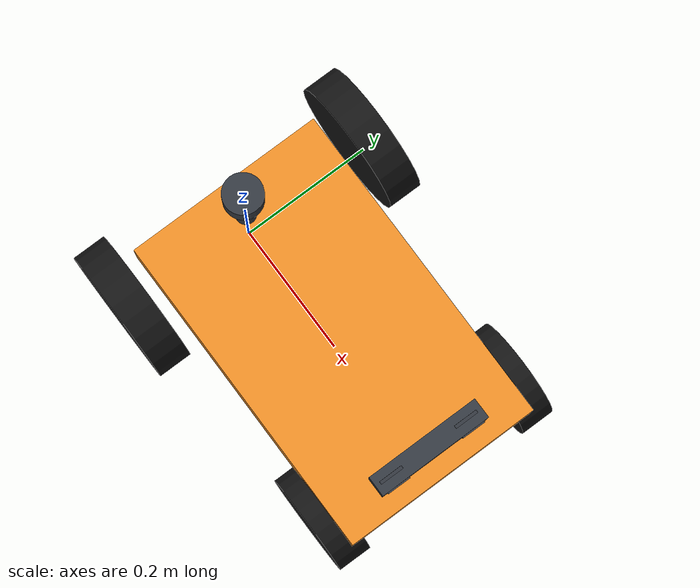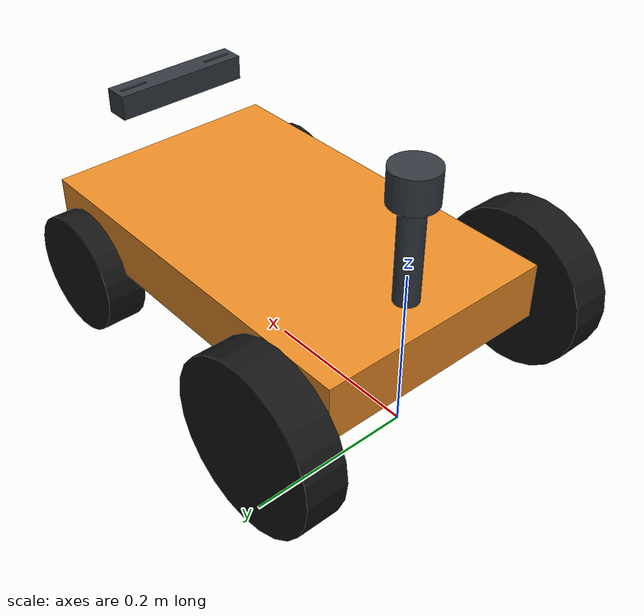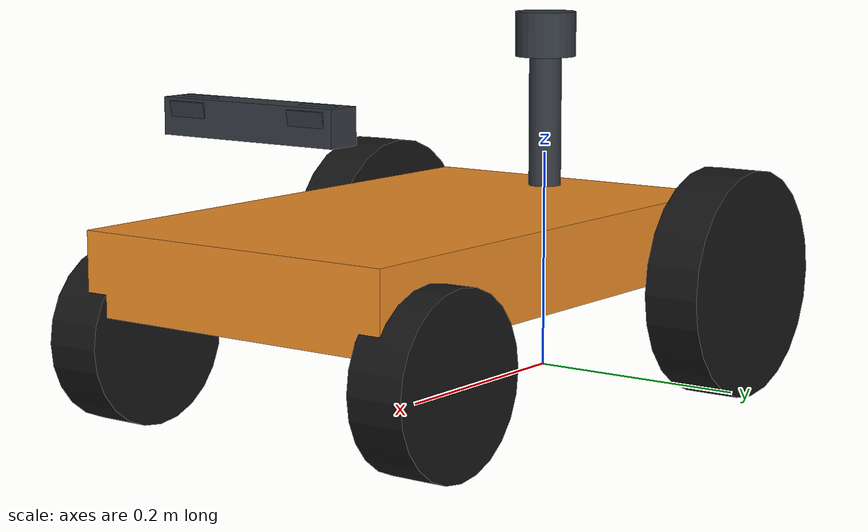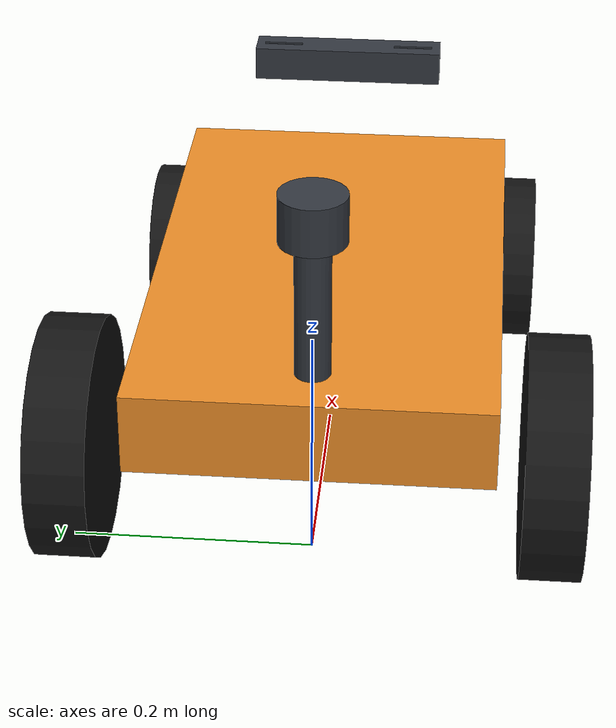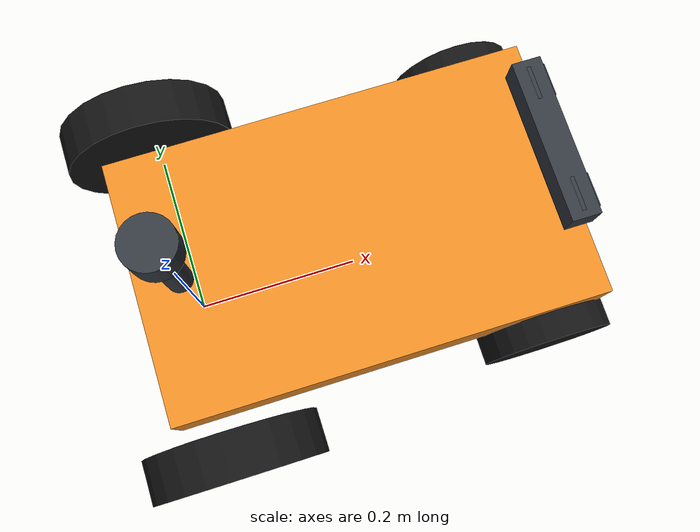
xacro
<?xml version="1.0"?>
<robot name="fieldmind_rover" xmlns:xacro="http://www.ros.org/wiki/xacro">
  <!-- Géométrie (m), section [geometrie] de rover.toml -->
  <xacro:property name="empattement" value="0.38"/>
  <xacro:property name="voie_arriere" value="0.39"/>
  <xacro:property name="voie_avant" value="0.31"/>
  <xacro:property name="diametre_roue_arriere" value="0.200"/>
  <xacro:property name="diametre_roue_avant" value="0.150"/>
  <xacro:property name="emprise_arriere" value="-0.11"/>
  <xacro:property name="emprise_avant" value="0.46"/>
  <xacro:property name="emprise_demi_largeur" value="0.225"/>
  <xacro:property name="hauteur_max" value="0.36"/>
  <xacro:property name="largeur_roue" value="0.05"/>

  <!-- Capteurs, sections [lidar], [cameras], [gnss] -->
  <xacro:property name="lidar_x" value="0.0"/>
  <xacro:property name="lidar_y" value="0.0"/>
  <xacro:property name="lidar_z" value="0.322"/>
  <xacro:property name="camera_x" value="0.415"/>
  <xacro:property name="camera_base" value="0.120"/>
  <xacro:property name="camera_z" value="0.265"/>
  <xacro:property name="camera_inclinaison_deg" value="10.0"/>
  <xacro:property name="gnss_x" value="0.20"/>
  <xacro:property name="gnss_y" value="-0.10"/>
  <!-- Non renseignés dans rover.toml : positions approchées, à mesurer. Sans effet sur les
       mesures (la centrale est déjà dans les axes de base_link, le GPS fait 2 à 3 m près). -->
  <xacro:property name="gnss_z" value="0.30"/>
  <xacro:property name="imu_x" value="0.15"/>
  <xacro:property name="imu_z" value="0.12"/>

  <xacro:property name="r_ar" value="${diametre_roue_arriere / 2}"/>
  <xacro:property name="r_av" value="${diametre_roue_avant / 2}"/>
  <xacro:property name="longueur" value="${emprise_avant - emprise_arriere}"/>

  <material name="coque"><color rgba="0.92 0.55 0.15 1"/></material>
  <material name="pneu"><color rgba="0.08 0.08 0.08 1"/></material>
  <material name="capteur"><color rgba="0.20 0.22 0.25 1"/></material>

  <link name="base_link">
    <!-- Plateau et coque -->
    <visual>
      <origin xyz="${(emprise_avant - 0.02 + emprise_arriere + 0.06) / 2} 0 0.135"/>
      <geometry><box size="${longueur - 0.08} 0.30 0.07"/></geometry>
      <material name="coque"/>
    </visual>
    <!-- Mât du lidar -->
    <visual>
      <origin xyz="${lidar_x} ${lidar_y} ${(0.17 + lidar_z - 0.02) / 2}"/>
      <geometry><cylinder radius="0.015" length="${lidar_z - 0.02 - 0.17}"/></geometry>
      <material name="capteur"/>
    </visual>
    <!-- Barre stéréo -->
    <visual>
      <origin xyz="${camera_x - 0.015} 0 ${camera_z}"/>
      <geometry><box size="0.03 ${camera_base + 0.05} 0.03"/></geometry>
      <material name="capteur"/>
    </visual>
    <!-- Emprise au sol (rectangle englobant, roues comprises), de 0 à la hauteur maximale -->
    <collision>
      <origin xyz="${(emprise_avant + emprise_arriere) / 2} 0 ${hauteur_max / 2}"/>
      <geometry><box size="${longueur} ${2 * emprise_demi_largeur} ${hauteur_max}"/></geometry>
    </collision>
  </link>

  <link name="base_footprint"/>
  <joint name="base_footprint_joint" type="fixed">
    <parent link="base_link"/><child link="base_footprint"/>
    <origin xyz="0 0 0"/>
  </joint>

  <!-- Roues (articulations fixes : affichage seulement) -->
  <xacro:macro name="roue" params="nom x y rayon">
    <link name="${nom}">
      <visual>
        <origin rpy="${pi / 2} 0 0"/>
        <geometry><cylinder radius="${rayon}" length="${largeur_roue}"/></geometry>
        <material name="pneu"/>
      </visual>
    </link>
    <joint name="${nom}_joint" type="fixed">
      <parent link="base_link"/><child link="${nom}"/>
      <origin xyz="${x} ${y} ${rayon}"/>
    </joint>
  </xacro:macro>
  <xacro:roue nom="roue_ar_g" x="0" y="${voie_arriere / 2}" rayon="${r_ar}"/>
  <xacro:roue nom="roue_ar_d" x="0" y="${-voie_arriere / 2}" rayon="${r_ar}"/>
  <xacro:roue nom="roue_av_g" x="${empattement}" y="${voie_avant / 2}" rayon="${r_av}"/>
  <xacro:roue nom="roue_av_d" x="${empattement}" y="${-voie_avant / 2}" rayon="${r_av}"/>

  <!-- Lidar : repère des rayons du LaserScan (angles déjà dans les axes de base_link) -->
  <link name="lidar_link">
    <visual>
      <origin xyz="0 0 -0.012"/>
      <geometry><cylinder radius="0.028" length="0.041"/></geometry>
      <material name="capteur"/>
    </visual>
  </link>
  <joint name="lidar_joint" type="fixed">
    <parent link="base_link"/><child link="lidar_link"/>
    <origin xyz="${lidar_x} ${lidar_y} ${lidar_z}"/>
  </joint>

  <link name="imu_link"/>
  <joint name="imu_joint" type="fixed">
    <parent link="base_link"/><child link="imu_link"/>
    <origin xyz="${imu_x} 0 ${imu_z}"/>
  </joint>

  <link name="gnss_link"/>
  <joint name="gnss_joint" type="fixed">
    <parent link="base_link"/><child link="gnss_link"/>
    <origin xyz="${gnss_x} ${gnss_y} ${gnss_z}"/>
  </joint>

  <xacro:macro name="camera" params="nom y">
    <link name="camera_${nom}_link">
      <visual>
        <origin xyz="-0.01 0 0"/>
        <geometry><box size="0.02 0.035 0.025"/></geometry>
        <material name="capteur"/>
      </visual>
    </link>
    <joint name="camera_${nom}_joint" type="fixed">
      <parent link="base_link"/><child link="camera_${nom}_link"/>
      <origin xyz="${camera_x} ${y} ${camera_z}" rpy="0 ${radians(camera_inclinaison_deg)} 0"/>
    </joint>
    <link name="camera_${nom}_optical_frame"/>
    <joint name="camera_${nom}_optical_joint" type="fixed">
      <parent link="camera_${nom}_link"/><child link="camera_${nom}_optical_frame"/>
      <origin rpy="${-pi / 2} 0 ${-pi / 2}"/>
    </joint>
  </xacro:macro>
  <xacro:camera nom="gauche" y="${camera_base / 2}"/>
  <xacro:camera nom="droite" y="${-camera_base / 2}"/>
</robot>
